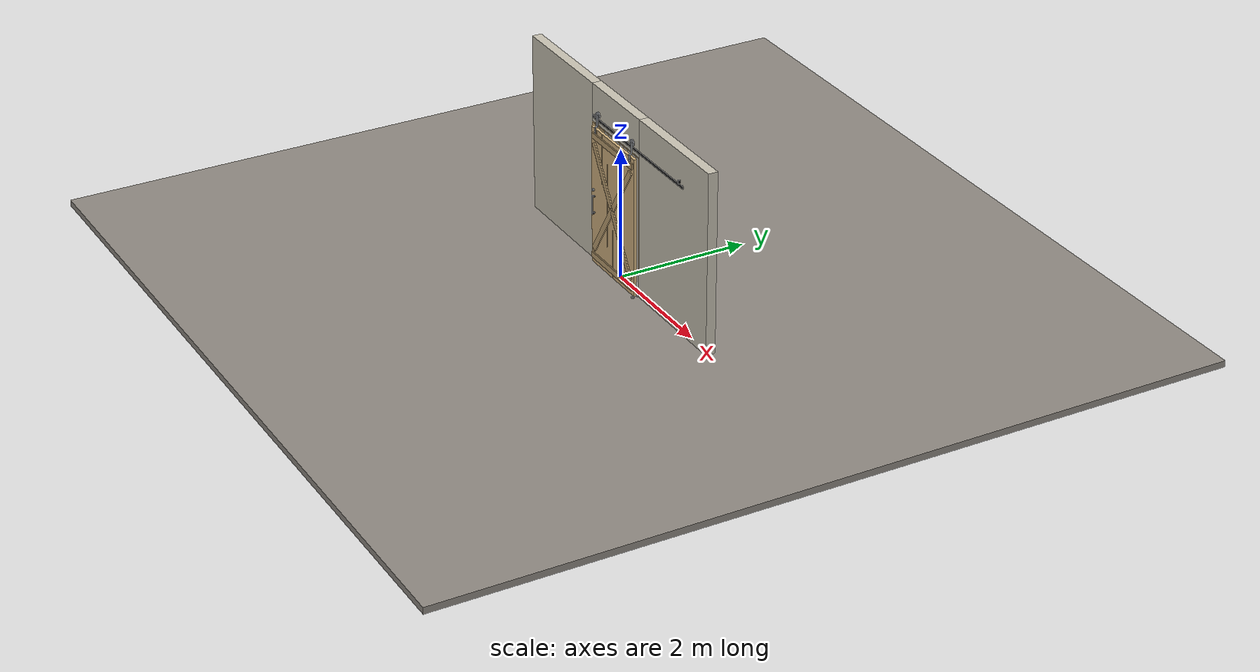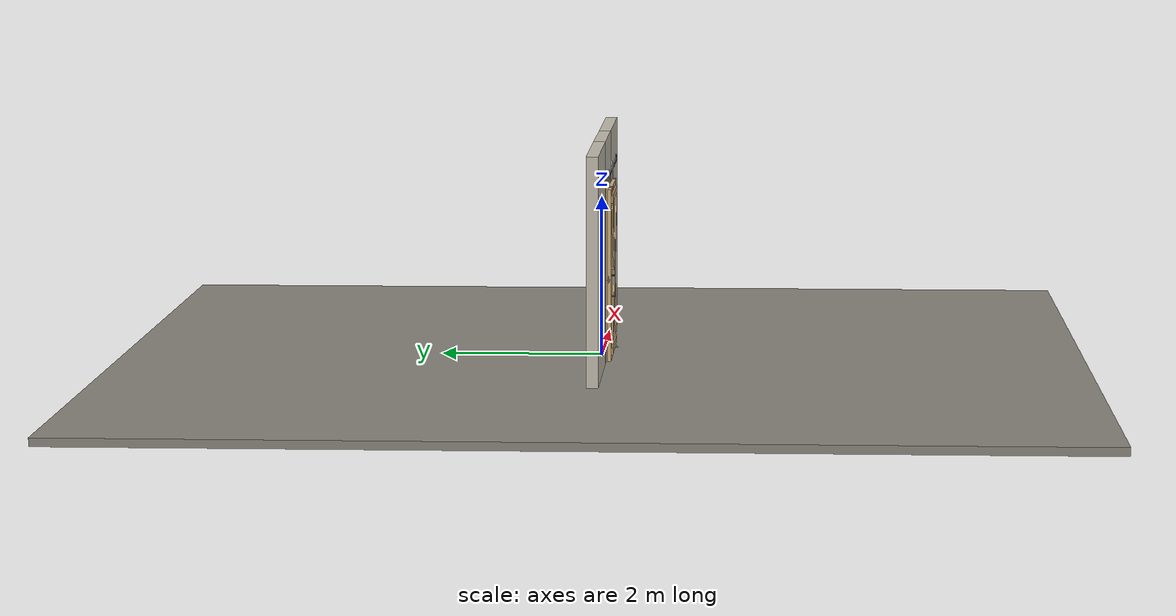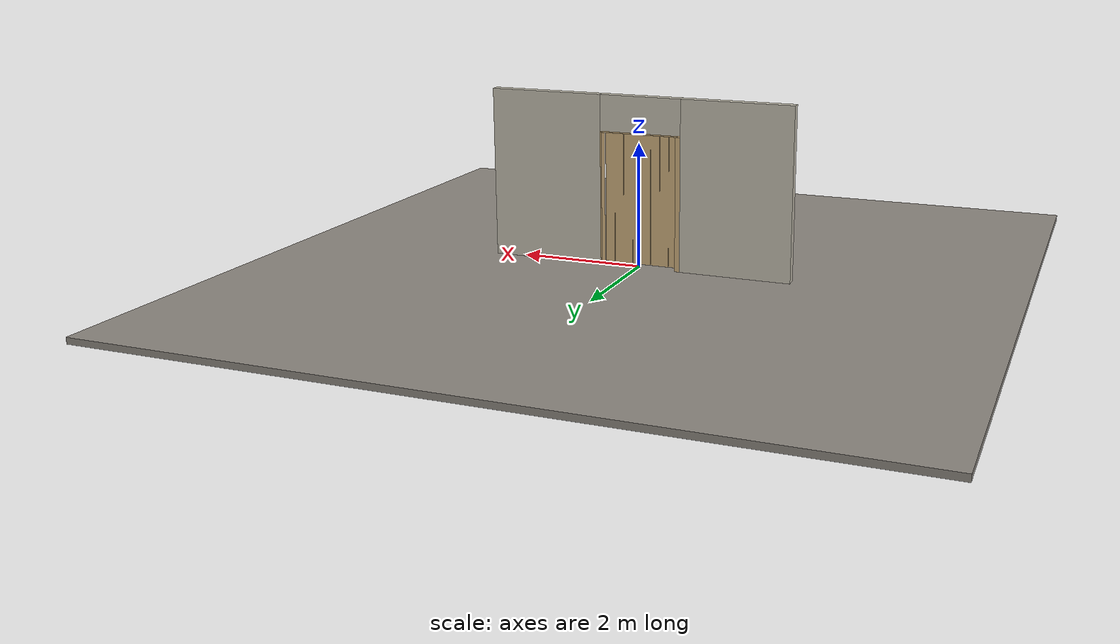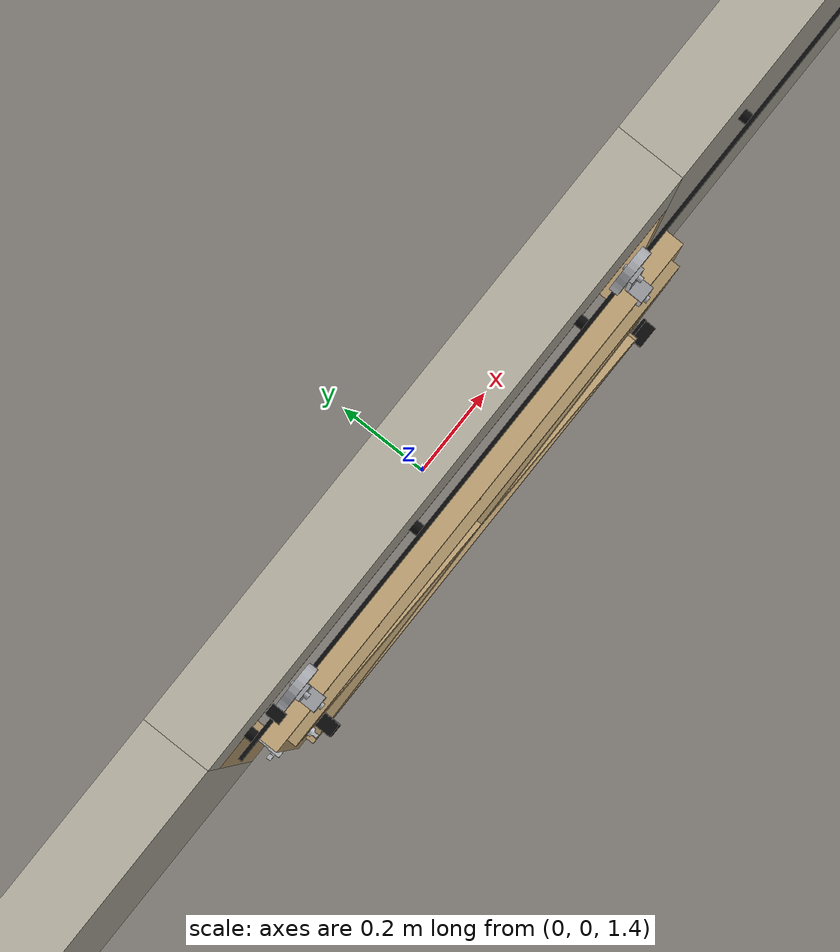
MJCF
<?xml version="1.0" ?>
<mujoco model="db0950_sliding_single_full">
  <compiler angle="radian" meshdir="../../hardware" texturedir="../../textures" autolimits="true" inertiafromgeom="false"/>
  <option timestep="0.002" integrator="implicitfast" cone="elliptic" impratio="10" noslip_iterations="3">
    <flag multiccd="enable"/>
  </option>
  <size memory="16M"/>
  <default>
    <geom condim="4" solref="0.005 1" solimp="0.95 0.99 0.001"/>
    <joint solreflimit="0.005 1" solimplimit="0.95 0.99 0.001"/>
    <tendon solreflimit="0.005 1"/>
    <equality solref="0.002 1"/>
  </default>
  <visual>
    <headlight ambient="0.4 0.4 0.4" diffuse="0.7 0.7 0.7" specular="0.2 0.2 0.2"/>
    <quality shadowsize="4096"/>
    <map znear="0.01" zfar="60"/>
  </visual>
  <asset>
    <mesh name="pull_2b47e55ff8" file="pull_2b47e55ff8.obj"/>
    <mesh name="thumbturn_eb5c9899a3" file="thumbturn_eb5c9899a3.obj"/>
    <material name="mat_floor" rgba="0.55 0.53 0.5 1" specular="0.2" shininess="0.15" reflectance="0"/>
    <material name="mat_wall" rgba="0.78 0.76 0.7 1" specular="0.2" shininess="0.1" reflectance="0"/>
    <material name="mat_frame" rgba="0.82 0.7 0.5 1" specular="0.2" shininess="0.45" reflectance="0"/>
    <material name="mat_track" rgba="0.05 0.05 0.05 1" specular="0.38" shininess="0.3" reflectance="0.12"/>
    <material name="mat_leaf" rgba="0.82 0.7 0.5 1" specular="0.2" shininess="0.45" reflectance="0"/>
    <material name="mat_leaf_brace" rgba="0.738 0.63 0.45 1" specular="0.2" shininess="0.2" reflectance="0"/>
    <material name="mat_roller" rgba="0.65 0.66 0.68 1" specular="0.74" shininess="0.5" reflectance="0.36"/>
    <material name="mat_op_black_matte_metal" rgba="0.05 0.05 0.05 1" specular="0.38" shininess="0.3" reflectance="0.12"/>
    <material name="mat_hook" rgba="0.75 0.76 0.77 1" specular="0.8" shininess="0.65" reflectance="0.4"/>
    <texture name="skybox" type="skybox" builtin="gradient" rgb1="0.6 0.7 0.85" rgb2="0.9 0.92 0.95" width="256" height="256"/>
  </asset>
  <worldbody>
    <light name="sun" pos="1.5 -2.5 4" dir="-0.3 0.5 -0.8" directional="true" diffuse="0.8 0.8 0.8" specular="0.3 0.3 0.3" castshadow="true"/>
    <light name="fill" pos="-1.5 2.5 3" dir="0.3 -0.5 -0.7" directional="true" diffuse="0.35 0.35 0.4" castshadow="false"/>
    <camera name="robot_view" pos="0 -2.644375 1.817425" xyaxes="1 0 0 0 0.26963 0.962964" fovy="52"/>
    <camera name="far_view" pos="0 2.644375 1.817425" xyaxes="-1 0 0 0 -0.26963 0.962964" fovy="52"/>
    <camera name="iso" pos="2.009725 -2.221275 2.240525" xyaxes="0.741536 0.670913 0 -0.242917 0.268487 0.932151" fovy="46"/>
    <camera name="detail_handle" pos="-0.3395 -0.9815 1.23" xyaxes="0.97561 0.219512 0 -0.070934 0.315262 0.94635" fovy="38"/>
    <geom name="floor" type="box" size="6 6 0.05" pos="0 0 -0.05" material="mat_floor" group="0" contype="1" conaffinity="1" friction="0.8 0.005 0.0001" density="2400"/>
    <geom name="wall_left" type="box" size="0.90075 0.0725 1.377" pos="-1.59925 0 1.377" material="mat_wall" group="0" contype="1" conaffinity="1" friction="0.6 0.005 0.0001" density="800"/>
    <geom name="wall_right" type="box" size="0.93075 0.0725 1.377" pos="1.56925 0 1.377" material="mat_wall" group="0" contype="1" conaffinity="1" friction="0.6 0.005 0.0001" density="800"/>
    <geom name="wall_header" type="box" size="0.6685 0.0725 0.2905" pos="-0.03 0 2.4635" material="mat_wall" group="0" contype="1" conaffinity="1" friction="0.6 0.005 0.0001" density="800"/>
    <geom name="jamb_r" type="box" size="0.0095 0.0725 1.077" pos="0.629 0 1.077" material="mat_frame" group="0" contype="1" conaffinity="1" friction="0.6 0.005 0.0001" density="300"/>
    <geom name="jamb_head" type="box" size="0.6385 0.0725 0.0095" pos="0 0 2.1635" material="mat_frame" group="0" contype="1" conaffinity="1" friction="0.6 0.005 0.0001" density="300"/>
    <geom name="flat_track" type="box" size="1.269 0.004 0.02" pos="0.6095 -0.0945 2.274" material="mat_track" group="0" contype="1" conaffinity="1" friction="0.6 0.005 0.0001" density="7850"/>
    <geom name="track_standoff_0" type="cylinder" size="0.012 0.009" pos="-0.6095 -0.0815 2.274" quat="0.707107 -0.707107 0 0" material="mat_track" group="1" contype="0" conaffinity="0" density="7850"/>
    <geom name="track_standoff_1" type="cylinder" size="0.012 0.009" pos="-0.1219 -0.0815 2.274" quat="0.707107 -0.707107 0 0" material="mat_track" group="1" contype="0" conaffinity="0" density="7850"/>
    <geom name="track_standoff_2" type="cylinder" size="0.012 0.009" pos="0.3657 -0.0815 2.274" quat="0.707107 -0.707107 0 0" material="mat_track" group="1" contype="0" conaffinity="0" density="7850"/>
    <geom name="track_standoff_3" type="cylinder" size="0.012 0.009" pos="0.8533 -0.0815 2.274" quat="0.707107 -0.707107 0 0" material="mat_track" group="1" contype="0" conaffinity="0" density="7850"/>
    <geom name="track_standoff_4" type="cylinder" size="0.012 0.009" pos="1.3409 -0.0815 2.274" quat="0.707107 -0.707107 0 0" material="mat_track" group="1" contype="0" conaffinity="0" density="7850"/>
    <geom name="track_standoff_5" type="cylinder" size="0.012 0.009" pos="1.8285 -0.0815 2.274" quat="0.707107 -0.707107 0 0" material="mat_track" group="1" contype="0" conaffinity="0" density="7850"/>
    <geom name="leaf_track_stop_l" type="box" size="0.012 0.016 0.027" pos="-0.5515 -0.0945 2.319" material="mat_track" group="0" contype="1" conaffinity="1" friction="0.6 0.005 0.0001" density="7850"/>
    <geom name="leaf_track_stop_r" type="box" size="0.012 0.016 0.027" pos="1.7705 -0.0945 2.319" material="mat_track" group="0" contype="1" conaffinity="1" friction="0.6 0.005 0.0001" density="7850"/>
    <geom name="leaf_hook_keeper" type="box" size="0.008 0.015 0.006" pos="-0.6275 -0.1145 1.03" material="mat_hook" group="0" contype="1" conaffinity="1" friction="0.6 0.005 0.0001" density="7900"/>
    <geom name="jamb_latch_0" type="box" size="0.0395 0.0725 1.077" pos="-0.659 0 1.077" material="mat_frame" group="0" contype="1" conaffinity="1" friction="0.6 0.005 0.0001" density="300"/>
    <geom name="floor_guide_n" type="box" size="0.028 0.004 0.009" pos="0.6095 -0.1415 0.009" material="mat_track" group="0" contype="1" conaffinity="1" friction="0.6 0.005 0.0001" density="7850"/>
    <geom name="floor_guide_n_foot" type="box" size="0.028 0.018 0.002" pos="0.6095 -0.1555 0.002" material="mat_track" group="0" contype="1" conaffinity="1" friction="0.6 0.005 0.0001" density="7850"/>
    <geom name="floor_guide_p" type="box" size="0.028 0.004 0.009" pos="0.6095 -0.0875 0.009" material="mat_track" group="0" contype="1" conaffinity="1" friction="0.6 0.005 0.0001" density="7850"/>
    <geom name="floor_guide_p_foot" type="box" size="0.028 0.018 0.002" pos="0.6095 -0.0735 0.002" material="mat_track" group="0" contype="1" conaffinity="1" friction="0.6 0.005 0.0001" density="7850"/>
    <geom name="leaf_hook_keeper_bracket" type="box" size="0.0064 0.014 0.005" pos="-0.6275 -0.086 1.03" material="mat_hook" group="1" contype="0" conaffinity="0" density="7850"/>
    <site name="approach_point" pos="0 -1.5 0" quat="1 0 0 0" size="0.05" rgba="0.2 0.9 0.2 0.5" group="4"/>
    <site name="goal_point" pos="0 1.5 0" quat="1 0 0 0" size="0.05" rgba="0.2 0.9 0.2 0.5" group="4"/>
    <site name="door_plane_center" pos="0 0 1.077" quat="1 0 0 0" size="0.02" rgba="0.2 0.9 0.2 0.5" group="4"/>
    <body name="leaf" pos="0 -0.1145 0">
      <inertial pos="-0.005303 0.000112 1.178772" mass="46.532695" quat="0.500916 -0.500944 -0.500184 -0.49795" diaginertia="6.295600081 21.242737607 27.518608516"/>
      <joint name="leaf_slide" type="slide" axis="1 0 0" limited="true" range="0 1.219" damping="4.339184" frictionloss="32.115389" armature="0.5"/>
      <geom name="leaf_slab" type="box" size="0.6095 0.022 1.067" pos="0 0 1.079" material="mat_leaf" group="0" contype="1" conaffinity="1" friction="0.35 0.005 0.0001" density="1"/>
      <geom name="leaf_plank_gap_1" type="box" size="0.002 0.023 1.057" pos="-0.457125 0 1.079" material="mat_leaf_brace" group="1" contype="0" conaffinity="0" density="1"/>
      <geom name="leaf_plank_gap_2" type="box" size="0.002 0.023 1.057" pos="-0.30475 0 1.079" material="mat_leaf_brace" group="1" contype="0" conaffinity="0" density="1"/>
      <geom name="leaf_plank_gap_3" type="box" size="0.002 0.023 1.057" pos="-0.152375 0 1.079" material="mat_leaf_brace" group="1" contype="0" conaffinity="0" density="1"/>
      <geom name="leaf_plank_gap_4" type="box" size="0.002 0.023 1.057" pos="0 0 1.079" material="mat_leaf_brace" group="1" contype="0" conaffinity="0" density="1"/>
      <geom name="leaf_plank_gap_5" type="box" size="0.002 0.023 1.057" pos="0.152375 0 1.079" material="mat_leaf_brace" group="1" contype="0" conaffinity="0" density="1"/>
      <geom name="leaf_plank_gap_6" type="box" size="0.002 0.023 1.057" pos="0.30475 0 1.079" material="mat_leaf_brace" group="1" contype="0" conaffinity="0" density="1"/>
      <geom name="leaf_plank_gap_7" type="box" size="0.002 0.023 1.057" pos="0.457125 0 1.079" material="mat_leaf_brace" group="1" contype="0" conaffinity="0" density="1"/>
      <geom name="leaf_batten_13" type="box" size="0.5795 0.01 0.045" pos="0 -0.032 0.132" material="mat_leaf_brace" group="1" contype="0" conaffinity="0" density="1"/>
      <geom name="leaf_batten_202" type="box" size="0.5795 0.01 0.045" pos="0 -0.032 2.026" material="mat_leaf_brace" group="1" contype="0" conaffinity="0" density="1"/>
      <geom name="leaf_brace_z" type="box" size="0.99295 0.01 0.045" pos="0 -0.032 1.079" quat="0.875033 0 -0.484064 0" material="mat_leaf_brace" group="1" contype="0" conaffinity="0" density="1"/>
      <geom name="leaf_brace_x" type="box" size="0.99295 0.01 0.045" pos="0 -0.032 1.079" quat="0.875033 0 0.484064 0" material="mat_leaf_brace" group="1" contype="0" conaffinity="0" density="1"/>
      <geom name="leaf_hanger_wheel_0" type="cylinder" size="0.05 0.01" pos="-0.4895 0.02 2.344" quat="0.707107 -0.707107 0 0" material="mat_roller" group="1" contype="0" conaffinity="0" density="7850"/>
      <geom name="leaf_hanger_mount_0" type="box" size="0.018 0.004 0.0725" pos="-0.4895 -0.026 2.0985" material="mat_roller" group="1" contype="0" conaffinity="0" density="7850"/>
      <geom name="leaf_hanger_strap_0" type="box" size="0.018 0.004 0.0925" pos="-0.4895 0.006 2.2635" material="mat_roller" group="1" contype="0" conaffinity="0" density="7850"/>
      <geom name="leaf_hanger_bend_0" type="box" size="0.018 0.02 0.004" pos="-0.4895 -0.01 2.171" material="mat_roller" group="1" contype="0" conaffinity="0" density="7850"/>
      <geom name="leaf_hanger_axle_0" type="cylinder" size="0.006 0.021" pos="-0.4895 0.013 2.344" quat="0.707107 -0.707107 0 0" material="mat_roller" group="1" contype="0" conaffinity="0" density="7850"/>
      <geom name="leaf_hanger_bolt_0_90" type="cylinder" size="0.007 0.004" pos="-0.4895 -0.032 2.056" quat="0.707107 -0.707107 0 0" material="mat_roller" group="1" contype="0" conaffinity="0" density="7850"/>
      <geom name="leaf_hanger_bolt_0_45" type="cylinder" size="0.007 0.004" pos="-0.4895 -0.032 2.101" quat="0.707107 -0.707107 0 0" material="mat_roller" group="1" contype="0" conaffinity="0" density="7850"/>
      <geom name="leaf_hanger_wheel_1" type="cylinder" size="0.05 0.01" pos="0.4895 0.02 2.344" quat="0.707107 -0.707107 0 0" material="mat_roller" group="1" contype="0" conaffinity="0" density="7850"/>
      <geom name="leaf_hanger_mount_1" type="box" size="0.018 0.004 0.0725" pos="0.4895 -0.026 2.0985" material="mat_roller" group="1" contype="0" conaffinity="0" density="7850"/>
      <geom name="leaf_hanger_strap_1" type="box" size="0.018 0.004 0.0925" pos="0.4895 0.006 2.2635" material="mat_roller" group="1" contype="0" conaffinity="0" density="7850"/>
      <geom name="leaf_hanger_bend_1" type="box" size="0.018 0.02 0.004" pos="0.4895 -0.01 2.171" material="mat_roller" group="1" contype="0" conaffinity="0" density="7850"/>
      <geom name="leaf_hanger_axle_1" type="cylinder" size="0.006 0.021" pos="0.4895 0.013 2.344" quat="0.707107 -0.707107 0 0" material="mat_roller" group="1" contype="0" conaffinity="0" density="7850"/>
      <geom name="leaf_hanger_bolt_1_90" type="cylinder" size="0.007 0.004" pos="0.4895 -0.032 2.056" quat="0.707107 -0.707107 0 0" material="mat_roller" group="1" contype="0" conaffinity="0" density="7850"/>
      <geom name="leaf_hanger_bolt_1_45" type="cylinder" size="0.007 0.004" pos="0.4895 -0.032 2.101" quat="0.707107 -0.707107 0 0" material="mat_roller" group="1" contype="0" conaffinity="0" density="7850"/>
      <geom name="leaf_pull_n" type="mesh" mesh="pull_2b47e55ff8" pos="-0.5195 -0.022 0.95" quat="0 0 -0.707107 0.707107" material="mat_op_black_matte_metal" group="1" contype="0" conaffinity="0" density="3000"/>
      <geom name="leaf_pull_col_n" type="capsule" size="0.006 0.13" pos="-0.5195 -0.067 0.95" material="mat_op_black_matte_metal" group="3" contype="1" conaffinity="1" rgba="0.8 0.3 0.3 0.25" friction="0.7 0.01 0.0001" density="3000"/>
      <geom name="leaf_hook_faceplate" type="box" size="0.0006 0.011 0.045" pos="-0.6089 0 1.03" material="mat_hook" group="1" contype="0" conaffinity="0" density="7900"/>
      <site name="leaf_pull_grip_n" pos="-0.5195 -0.067 0.95" quat="1 0 0 0" size="0.012" rgba="0.2 0.9 0.2 0.5" group="4"/>
      <site name="leaf_edge_mid" pos="-0.6095 0 1.079" quat="1 0 0 0" size="0.02" rgba="0.2 0.9 0.2 0.5" group="4"/>
      <body name="leaf_hook_thumbturn" pos="-0.5495 -0.022 1.17">
        <inertial pos="0 -0.012928 0" mass="0.178946" quat="0.5 0.5 0.5 0.5" diaginertia="0.000026045 0.000026215 0.000032438"/>
        <joint name="leaf_hook_thumbturn_hinge" type="hinge" axis="0 1 0" limited="true" range="0 1" damping="0.05" frictionloss="0.25" armature="0.005"/>
        <geom name="leaf_hook_tt_mesh" type="mesh" mesh="thumbturn_eb5c9899a3" pos="0 0 0" quat="0 0 -0.707107 0.707107" material="mat_hook" group="0" contype="1" conaffinity="1" friction="0.6 0.005 0.0001" density="7100"/>
        <geom name="leaf_hook_tt_col" type="box" size="0.006 0.012 0.016" pos="0 -0.02 0" material="mat_hook" group="3" contype="1" conaffinity="1" rgba="0.8 0.3 0.3 0.25" friction="0.6 0.005 0.0001" density="7100"/>
        <site name="leaf_hook_tt_grip" pos="0 -0.03 0" quat="1 0 0 0" size="0.01" rgba="0.2 0.9 0.2 0.5" group="4"/>
      </body>
      <body name="leaf_hook" pos="-0.6095 0 1.03">
        <inertial pos="-0.026737 0 -0.009263" mass="0.072048" quat="0.200817 0.200817 -0.677991 0.677991" diaginertia="0.000005266 0.00001511 0.000019175"/>
        <joint name="leaf_hook_hinge" type="hinge" axis="0 -1 0" limited="true" range="0 1" damping="0.05" frictionloss="0.1" armature="0.005"/>
        <geom name="leaf_hook_arm" type="box" size="0.022 0.005 0.006" pos="-0.02 0 -0.016" material="mat_hook" group="0" contype="1" conaffinity="1" friction="0.6 0.005 0.0001" density="7900"/>
        <geom name="leaf_hook_tip" type="box" size="0.006 0.005 0.016" pos="-0.036 0 0" material="mat_hook" group="0" contype="1" conaffinity="1" friction="0.6 0.005 0.0001" density="7900"/>
      </body>
    </body>
  </worldbody>
  <equality>
    <joint name="leaf_hook_couple" joint1="leaf_hook_hinge" joint2="leaf_hook_thumbturn_hinge" polycoef="0 1 0 0 0" active="true"/>
  </equality>
  <sensor>
    <jointpos name="leaf_slide_pos" joint="leaf_slide"/>
    <jointvel name="leaf_slide_vel" joint="leaf_slide"/>
    <jointpos name="leaf_hook_thumbturn_hinge_pos" joint="leaf_hook_thumbturn_hinge"/>
    <jointvel name="leaf_hook_thumbturn_hinge_vel" joint="leaf_hook_thumbturn_hinge"/>
    <jointpos name="leaf_hook_hinge_pos" joint="leaf_hook_hinge"/>
    <jointvel name="leaf_hook_hinge_vel" joint="leaf_hook_hinge"/>
  </sensor>
</mujoco>
